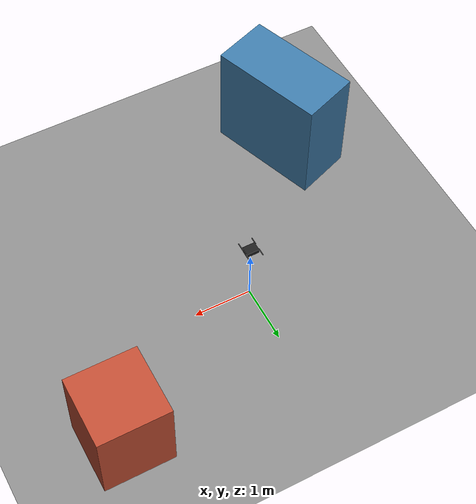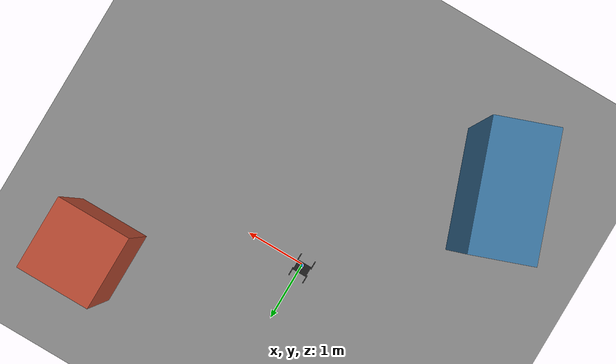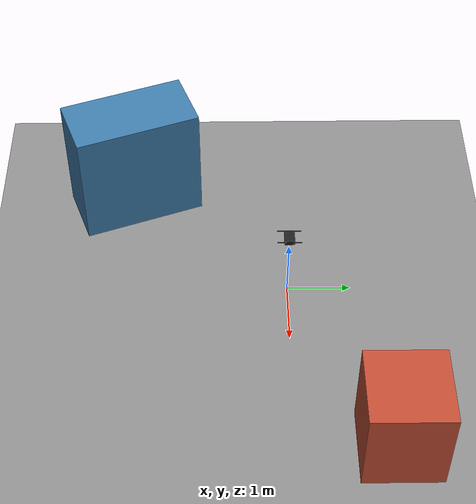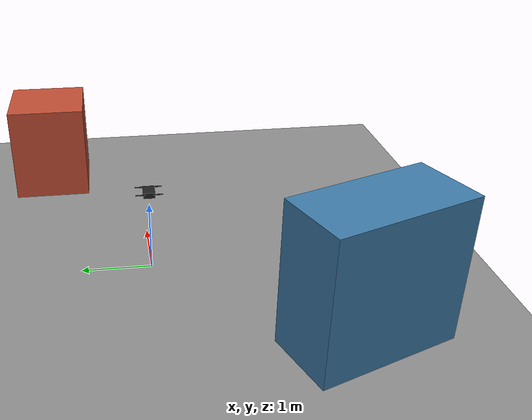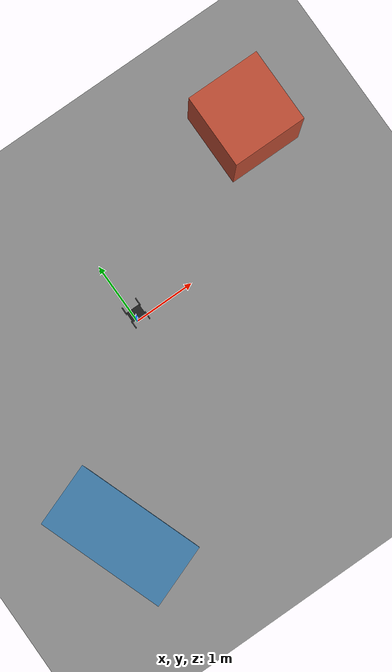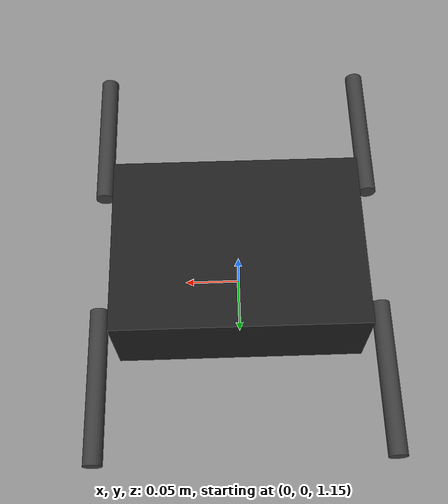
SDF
<?xml version="1.0" ?>
<sdf version="1.9">
  <world name="mosim_factory_minimal">
    <physics name="default_physics" type="ignored">
      <max_step_size>0.001</max_step_size>
      <real_time_factor>1.0</real_time_factor>
      <real_time_update_rate>1000</real_time_update_rate>
    </physics>

    <plugin filename="ignition-gazebo-physics-system" name="ignition::gazebo::systems::Physics"/>
    <plugin filename="ignition-gazebo-user-commands-system" name="ignition::gazebo::systems::UserCommands"/>
    <plugin filename="ignition-gazebo-scene-broadcaster-system" name="ignition::gazebo::systems::SceneBroadcaster"/>
    <plugin filename="ignition-gazebo-sensors-system" name="ignition::gazebo::systems::Sensors">
      <render_engine>ogre</render_engine>
    </plugin>
    <plugin filename="ignition-gazebo-imu-system" name="ignition::gazebo::systems::Imu"/>

    <light name="sun" type="directional">
      <cast_shadows>true</cast_shadows>
      <pose>0 0 10 0 0 0</pose>
      <diffuse>0.8 0.8 0.8 1</diffuse>
      <specular>0.2 0.2 0.2 1</specular>
      <attenuation>
        <range>1000</range>
        <constant>0.9</constant>
        <linear>0.01</linear>
        <quadratic>0.001</quadratic>
      </attenuation>
      <direction>-0.5 0.1 -0.9</direction>
    </light>

    <model name="ground_plane">
      <static>true</static>
      <link name="link">
        <collision name="collision">
          <geometry>
            <plane>
              <normal>0 0 1</normal>
              <size>40 40</size>
            </plane>
          </geometry>
        </collision>
        <visual name="visual">
          <geometry>
            <plane>
              <normal>0 0 1</normal>
              <size>40 40</size>
            </plane>
          </geometry>
          <material>
            <ambient>0.35 0.35 0.35 1</ambient>
            <diffuse>0.55 0.55 0.55 1</diffuse>
          </material>
        </visual>
      </link>
    </model>

    <model name="box_obstacle_01">
      <static>true</static>
      <pose>3.0 1.5 0.75 0 0 0</pose>
      <link name="link">
        <collision name="collision">
          <geometry>
            <box>
              <size>1.2 1.2 1.5</size>
            </box>
          </geometry>
        </collision>
        <visual name="visual">
          <geometry>
            <box>
              <size>1.2 1.2 1.5</size>
            </box>
          </geometry>
          <material>
            <ambient>0.45 0.18 0.12 1</ambient>
            <diffuse>0.75 0.30 0.20 1</diffuse>
          </material>
        </visual>
      </link>
    </model>

    <model name="box_obstacle_02">
      <static>true</static>
      <pose>-2.0 -2.5 1.0 0 0 0.35</pose>
      <link name="link">
        <collision name="collision">
          <geometry>
            <box>
              <size>1.0 2.0 2.0</size>
            </box>
          </geometry>
        </collision>
        <visual name="visual">
          <geometry>
            <box>
              <size>1.0 2.0 2.0</size>
            </box>
          </geometry>
          <material>
            <ambient>0.16 0.30 0.42 1</ambient>
            <diffuse>0.24 0.48 0.66 1</diffuse>
          </material>
        </visual>
      </link>
    </model>

    <include>
      <uri>model://sunray150</uri>
      <pose>0 0 1.2 0 0 0</pose>
    </include>
  </world>
</sdf>

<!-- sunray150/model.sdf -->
<sdf version="1.9">
  <model name="sunray150">
    <pose>0 0 0 0 0 0</pose>

    <link name="base_link">
      <inertial>
        <mass>0.65</mass>
        <inertia>
          <ixx>0.0040</ixx>
          <iyy>0.0040</iyy>
          <izz>0.0070</izz>
          <ixy>0</ixy>
          <ixz>0</ixz>
          <iyz>0</iyz>
        </inertia>
      </inertial>
      <collision name="body_collision">
        <geometry>
          <box>
            <size>0.22 0.16 0.08</size>
          </box>
        </geometry>
      </collision>
      <visual name="body_visual">
        <geometry>
          <box>
            <size>0.22 0.16 0.08</size>
          </box>
        </geometry>
        <material>
          <ambient>0.05 0.05 0.05 1</ambient>
          <diffuse>0.12 0.12 0.12 1</diffuse>
        </material>
      </visual>

      <sensor name="forward_imu" type="imu">
        <topic>/mosim/gazebo/imu</topic>
        <update_rate>200</update_rate>
        <always_on>true</always_on>
        <visualize>false</visualize>
      </sensor>

      <sensor name="mid360_lidar" type="gpu_lidar">
        <pose>0.035 0 0.045 0 0 0</pose>
        <topic>/mosim/gazebo/lidar_points</topic>
        <update_rate>10</update_rate>
        <always_on>true</always_on>
        <visualize>false</visualize>
        <lidar>
          <scan>
            <horizontal>
              <samples>360</samples>
              <resolution>1</resolution>
              <min_angle>-3.1415926</min_angle>
              <max_angle>3.1415926</max_angle>
            </horizontal>
            <vertical>
              <samples>32</samples>
              <resolution>1</resolution>
              <min_angle>-0.65</min_angle>
              <max_angle>0.65</max_angle>
            </vertical>
          </scan>
          <range>
            <min>0.1</min>
            <max>30.0</max>
            <resolution>0.02</resolution>
          </range>
          <noise>
            <type>gaussian</type>
            <mean>0.0</mean>
            <stddev>0.01</stddev>
          </noise>
        </lidar>
      </sensor>
    </link>

    <link name="rotor_0">
      <pose>0.12 0.12 0.02 0 0 0</pose>
      <inertial>
        <mass>0.005</mass>
        <inertia>
          <ixx>9.75e-07</ixx>
          <iyy>4.17041e-05</iyy>
          <izz>4.26041e-05</izz>
          <ixy>0</ixy>
          <ixz>0</ixz>
          <iyz>0</iyz>
        </inertia>
      </inertial>
      <collision name="rotor_0_collision">
        <geometry>
          <cylinder>
            <radius>0.065</radius>
            <length>0.004</length>
          </cylinder>
        </geometry>
      </collision>
      <visual name="visual">
        <pose>0 0 0 1.5707963 0 0</pose>
        <geometry>
          <cylinder>
            <radius>0.008</radius>
            <length>0.13</length>
          </cylinder>
        </geometry>
        <material>
          <ambient>0.12 0.12 0.12 1</ambient>
          <diffuse>0.24 0.24 0.24 1</diffuse>
        </material>
      </visual>
    </link>
    <link name="rotor_1">
      <pose>-0.12 0.12 0.02 0 0 0</pose>
      <inertial>
        <mass>0.005</mass>
        <inertia>
          <ixx>9.75e-07</ixx>
          <iyy>4.17041e-05</iyy>
          <izz>4.26041e-05</izz>
          <ixy>0</ixy>
          <ixz>0</ixz>
          <iyz>0</iyz>
        </inertia>
      </inertial>
      <collision name="rotor_1_collision">
        <geometry>
          <cylinder>
            <radius>0.065</radius>
            <length>0.004</length>
          </cylinder>
        </geometry>
      </collision>
      <visual name="visual">
        <pose>0 0 0 1.5707963 0 0</pose>
        <geometry>
          <cylinder>
            <radius>0.008</radius>
            <length>0.13</length>
          </cylinder>
        </geometry>
        <material>
          <ambient>0.12 0.12 0.12 1</ambient>
          <diffuse>0.24 0.24 0.24 1</diffuse>
        </material>
      </visual>
    </link>
    <link name="rotor_2">
      <pose>-0.12 -0.12 0.02 0 0 0</pose>
      <inertial>
        <mass>0.005</mass>
        <inertia>
          <ixx>9.75e-07</ixx>
          <iyy>4.17041e-05</iyy>
          <izz>4.26041e-05</izz>
          <ixy>0</ixy>
          <ixz>0</ixz>
          <iyz>0</iyz>
        </inertia>
      </inertial>
      <collision name="rotor_2_collision">
        <geometry>
          <cylinder>
            <radius>0.065</radius>
            <length>0.004</length>
          </cylinder>
        </geometry>
      </collision>
      <visual name="visual">
        <pose>0 0 0 1.5707963 0 0</pose>
        <geometry>
          <cylinder>
            <radius>0.008</radius>
            <length>0.13</length>
          </cylinder>
        </geometry>
        <material>
          <ambient>0.12 0.12 0.12 1</ambient>
          <diffuse>0.24 0.24 0.24 1</diffuse>
        </material>
      </visual>
    </link>
    <link name="rotor_3">
      <pose>0.12 -0.12 0.02 0 0 0</pose>
      <inertial>
        <mass>0.005</mass>
        <inertia>
          <ixx>9.75e-07</ixx>
          <iyy>4.17041e-05</iyy>
          <izz>4.26041e-05</izz>
          <ixy>0</ixy>
          <ixz>0</ixz>
          <iyz>0</iyz>
        </inertia>
      </inertial>
      <collision name="rotor_3_collision">
        <geometry>
          <cylinder>
            <radius>0.065</radius>
            <length>0.004</length>
          </cylinder>
        </geometry>
      </collision>
      <visual name="visual">
        <pose>0 0 0 1.5707963 0 0</pose>
        <geometry>
          <cylinder>
            <radius>0.008</radius>
            <length>0.13</length>
          </cylinder>
        </geometry>
        <material>
          <ambient>0.12 0.12 0.12 1</ambient>
          <diffuse>0.24 0.24 0.24 1</diffuse>
        </material>
      </visual>
    </link>

    <joint name="rotor_0_joint" type="revolute">
      <parent>base_link</parent>
      <child>rotor_0</child>
      <axis>
        <xyz>0 0 1</xyz>
        <limit>
          <lower>-1e+16</lower>
          <upper>1e+16</upper>
        </limit>
      </axis>
    </joint>
    <joint name="rotor_1_joint" type="revolute">
      <parent>base_link</parent>
      <child>rotor_1</child>
      <axis>
        <xyz>0 0 1</xyz>
        <limit>
          <lower>-1e+16</lower>
          <upper>1e+16</upper>
        </limit>
      </axis>
    </joint>
    <joint name="rotor_2_joint" type="revolute">
      <parent>base_link</parent>
      <child>rotor_2</child>
      <axis>
        <xyz>0 0 1</xyz>
        <limit>
          <lower>-1e+16</lower>
          <upper>1e+16</upper>
        </limit>
      </axis>
    </joint>
    <joint name="rotor_3_joint" type="revolute">
      <parent>base_link</parent>
      <child>rotor_3</child>
      <axis>
        <xyz>0 0 1</xyz>
        <limit>
          <lower>-1e+16</lower>
          <upper>1e+16</upper>
        </limit>
      </axis>
    </joint>

    <plugin filename="ignition-gazebo-multicopter-motor-model-system" name="gz::sim::systems::MulticopterMotorModel">
      <robotNamespace>sunray150</robotNamespace>
      <jointName>rotor_0_joint</jointName>
      <linkName>rotor_0</linkName>
      <turningDirection>ccw</turningDirection>
      <timeConstantUp>0.0125</timeConstantUp>
      <timeConstantDown>0.025</timeConstantDown>
      <maxRotVelocity>8000.0</maxRotVelocity>
      <motorConstant>8.54858e-06</motorConstant>
      <momentConstant>0.016</momentConstant>
      <commandSubTopic>gazebo/command/motor_speed</commandSubTopic>
      <motorNumber>0</motorNumber>
      <rotorDragCoefficient>8.06428e-05</rotorDragCoefficient>
      <rollingMomentCoefficient>1e-06</rollingMomentCoefficient>
      <motorSpeedPubTopic>motor_speed/0</motorSpeedPubTopic>
      <rotorVelocitySlowdownSim>1</rotorVelocitySlowdownSim>
      <motorType>velocity</motorType>
    </plugin>
    <plugin filename="ignition-gazebo-multicopter-motor-model-system" name="gz::sim::systems::MulticopterMotorModel">
      <robotNamespace>sunray150</robotNamespace>
      <jointName>rotor_1_joint</jointName>
      <linkName>rotor_1</linkName>
      <turningDirection>cw</turningDirection>
      <timeConstantUp>0.0125</timeConstantUp>
      <timeConstantDown>0.025</timeConstantDown>
      <maxRotVelocity>8000.0</maxRotVelocity>
      <motorConstant>8.54858e-06</motorConstant>
      <momentConstant>0.016</momentConstant>
      <commandSubTopic>gazebo/command/motor_speed</commandSubTopic>
      <motorNumber>1</motorNumber>
      <rotorDragCoefficient>8.06428e-05</rotorDragCoefficient>
      <rollingMomentCoefficient>1e-06</rollingMomentCoefficient>
      <motorSpeedPubTopic>motor_speed/1</motorSpeedPubTopic>
      <rotorVelocitySlowdownSim>1</rotorVelocitySlowdownSim>
      <motorType>velocity</motorType>
    </plugin>
    <plugin filename="ignition-gazebo-multicopter-motor-model-system" name="gz::sim::systems::MulticopterMotorModel">
      <robotNamespace>sunray150</robotNamespace>
      <jointName>rotor_2_joint</jointName>
      <linkName>rotor_2</linkName>
      <turningDirection>ccw</turningDirection>
      <timeConstantUp>0.0125</timeConstantUp>
      <timeConstantDown>0.025</timeConstantDown>
      <maxRotVelocity>8000.0</maxRotVelocity>
      <motorConstant>8.54858e-06</motorConstant>
      <momentConstant>0.016</momentConstant>
      <commandSubTopic>gazebo/command/motor_speed</commandSubTopic>
      <motorNumber>2</motorNumber>
      <rotorDragCoefficient>8.06428e-05</rotorDragCoefficient>
      <rollingMomentCoefficient>1e-06</rollingMomentCoefficient>
      <motorSpeedPubTopic>motor_speed/2</motorSpeedPubTopic>
      <rotorVelocitySlowdownSim>1</rotorVelocitySlowdownSim>
      <motorType>velocity</motorType>
    </plugin>
    <plugin filename="ignition-gazebo-multicopter-motor-model-system" name="gz::sim::systems::MulticopterMotorModel">
      <robotNamespace>sunray150</robotNamespace>
      <jointName>rotor_3_joint</jointName>
      <linkName>rotor_3</linkName>
      <turningDirection>cw</turningDirection>
      <timeConstantUp>0.0125</timeConstantUp>
      <timeConstantDown>0.025</timeConstantDown>
      <maxRotVelocity>8000.0</maxRotVelocity>
      <motorConstant>8.54858e-06</motorConstant>
      <momentConstant>0.016</momentConstant>
      <commandSubTopic>gazebo/command/motor_speed</commandSubTopic>
      <motorNumber>3</motorNumber>
      <rotorDragCoefficient>8.06428e-05</rotorDragCoefficient>
      <rollingMomentCoefficient>1e-06</rollingMomentCoefficient>
      <motorSpeedPubTopic>motor_speed/3</motorSpeedPubTopic>
      <rotorVelocitySlowdownSim>1</rotorVelocitySlowdownSim>
      <motorType>velocity</motorType>
    </plugin>
  </model>
</sdf>
